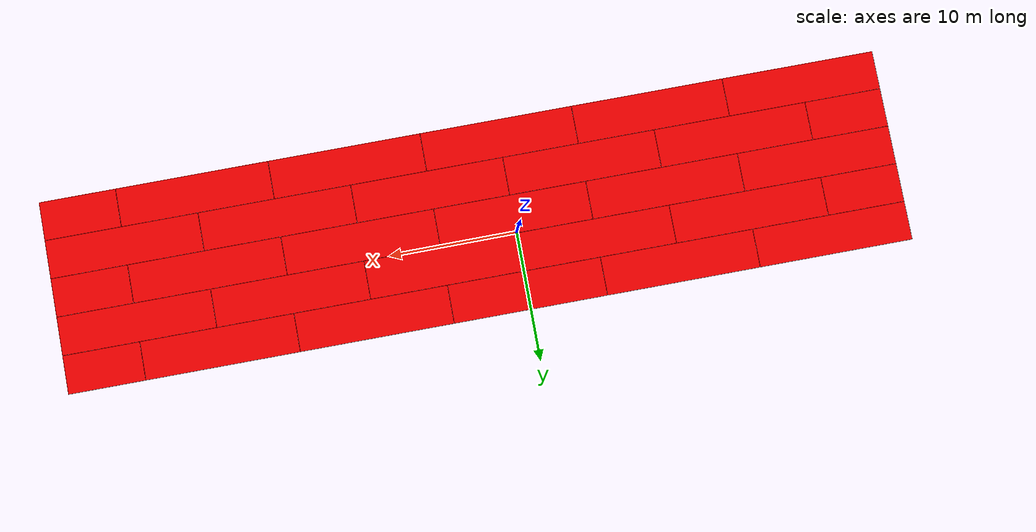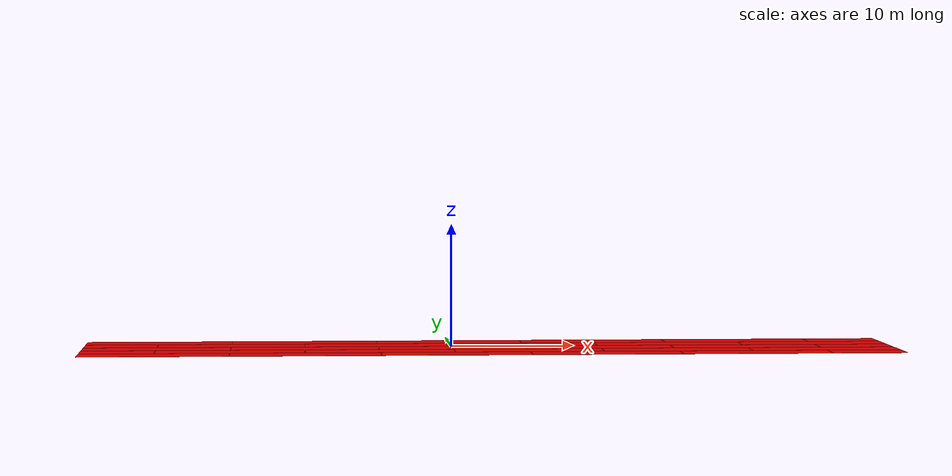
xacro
<?xml version="1.0"?>
<robot xmlns:xacro="http://www.ros.org/wiki/xacro" name="brick_wall">

  <!-- Properties -->
  <xacro:property name="brick_length" value="12.0"/>
  <xacro:property name="half_brick" value="${brick_length / 2}"/>
  <xacro:property name="brick_width" value="3.0"/>
  <xacro:property name="brick_height" value="0.05"/>
  <xacro:property name="gap" value="0.003"/>
  <xacro:property name="rows" value="5"/>
  <xacro:property name="columns" value="5"/>
  <xacro:property name="wall_length" value="${columns * step_x}"/>
  <xacro:property name="wall_width" value="${rows * step_y}"/>

  <xacro:property name="step_x" value="${brick_length + gap}"/>
  <xacro:property name="step_y" value="${brick_width + gap}"/>

  <gazebo>
    <physics type="ode">

        <!-- Simulation accuracy -->
        <max_step_size>0.001</max_step_size>
        <real_time_update_rate>1000</real_time_update_rate>

        <ode>
          <solver>
            <type>quick</type>
            <iters>200</iters>
          </solver>

          <constraints>
            <cfm>0.0</cfm>
            <erp>0.2</erp>
          </constraints>
        </ode>

    </physics>
  </gazebo>

  <!-- World Link -->
  <link name="world"/>

  <!-- Brick Macro -->
  <xacro:macro name="brick" params="name x y length">

    <link name="${name}">

      <!-- Visual -->
      <visual>
        <origin xyz="0 0 0" rpy="0 0 0"/>
        <geometry>

          <xacro:if value="${length == brick_length}">
            <mesh filename="package://brick_wall/meshes/Cen1.stl"
                  scale="1 1 1"/>
          </xacro:if>

          <xacro:unless value="${length == brick_length}">
            <mesh filename="package://brick_wall/meshes/Cen2.stl"
                  scale="1 1 1"/>
          </xacro:unless>

        </geometry>

        <material name="red">
          <color rgba="1 0 0 1"/>
        </material>
      </visual>

      <!-- Collision -->
      <collision>
        <origin xyz="0 0 ${brick_height/2}" rpy="0 0 0"/>
        <geometry>
            <box size="${length} ${brick_width} ${brick_height}"/>
        </geometry>
      </collision>

      <!-- Inertia -->
      <inertial>
        <mass value="100"/>
        <inertia ixx="100" ixy="0" ixz="0"
                 iyy="100" iyz="0"
                 izz="100"/>
      </inertial>

    </link>

    <!-- Gazebo Properties -->
    <gazebo reference="${name}">
        <material>Gazebo/Red</material>

        <!-- Balanced contact/friction for wheel motion on the platform -->
        <mu1>0.8</mu1>
        <mu2>0.8</mu2>
        <kp>2000000.0</kp>
        <kd>500.0</kd>
        <minDepth>0.002</minDepth>
        <maxVel>0.1</maxVel>

        <self_collide>false</self_collide>
        <static>true</static>

    </gazebo>

    <!-- Fixed Joint -->
    <joint name="${name}_joint" type="fixed">
      <parent link="world"/>
      <child link="${name}"/>
      <origin xyz="${x + length/2 - wall_length/2} ${y - wall_width/2} 0" rpy="0 0 0"/>
    </joint>

  </xacro:macro>

  <!-- Generate Row -->
  <xacro:macro name="generate_row" params="row col offset_x">
    <xacro:if value="${col &lt; columns}">

      <xacro:brick
        name="brick_${row}_${col}"
        x="${offset_x + col * step_x}"
        y="${row * step_y}"
        length="${brick_length}"/>

      <xacro:generate_row
        row="${row}"
        col="${col + 1}"
        offset_x="${offset_x}"/>

    </xacro:if>
  </xacro:macro>

  <!-- Generate Wall -->
  <xacro:macro name="generate_wall" params="row">
    <xacro:if value="${row &lt; rows}">

      <!-- Even Row -->
      <xacro:if value="${row % 2 == 0}">
        <xacro:generate_row row="${row}" col="0" offset_x="0"/>

        <xacro:brick
          name="edge_half_end_${row}"
          x="${columns * step_x}"
          y="${row * step_y}"
          length="${half_brick}"/>
      </xacro:if>

      <!-- Odd Row -->
      <xacro:if value="${row % 2 == 1}">
        <xacro:brick
          name="edge_half_start_${row}"
          x="0"
          y="${row * step_y}"
          length="${half_brick}"/>

        <xacro:generate_row
          row="${row}"
          col="0"
          offset_x="${half_brick + gap}"/>
      </xacro:if>

      <!-- Recursive Call -->
      <xacro:generate_wall row="${row + 1}"/>

    </xacro:if>
  </xacro:macro>

  <!-- Start Wall Generation -->
  <xacro:generate_wall row="0"/>

</robot>
